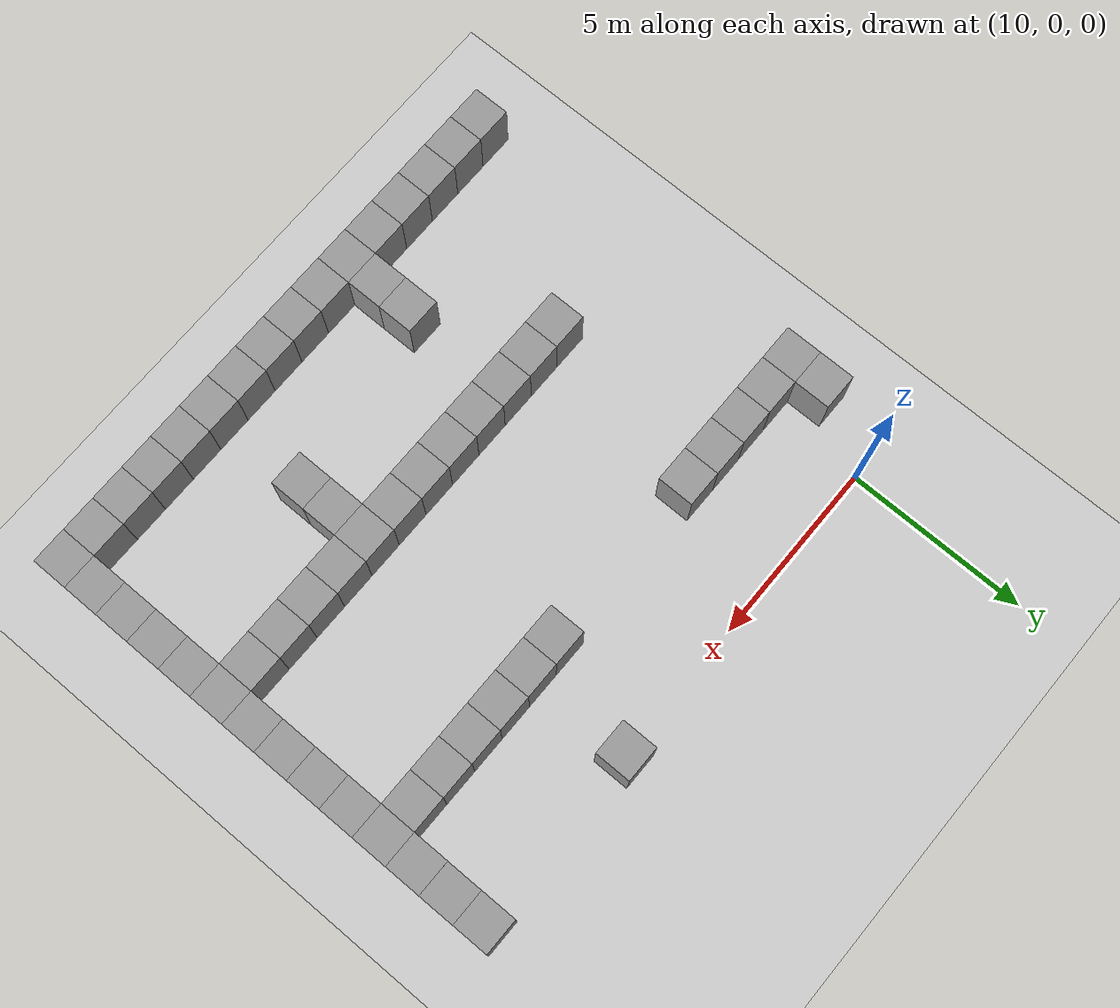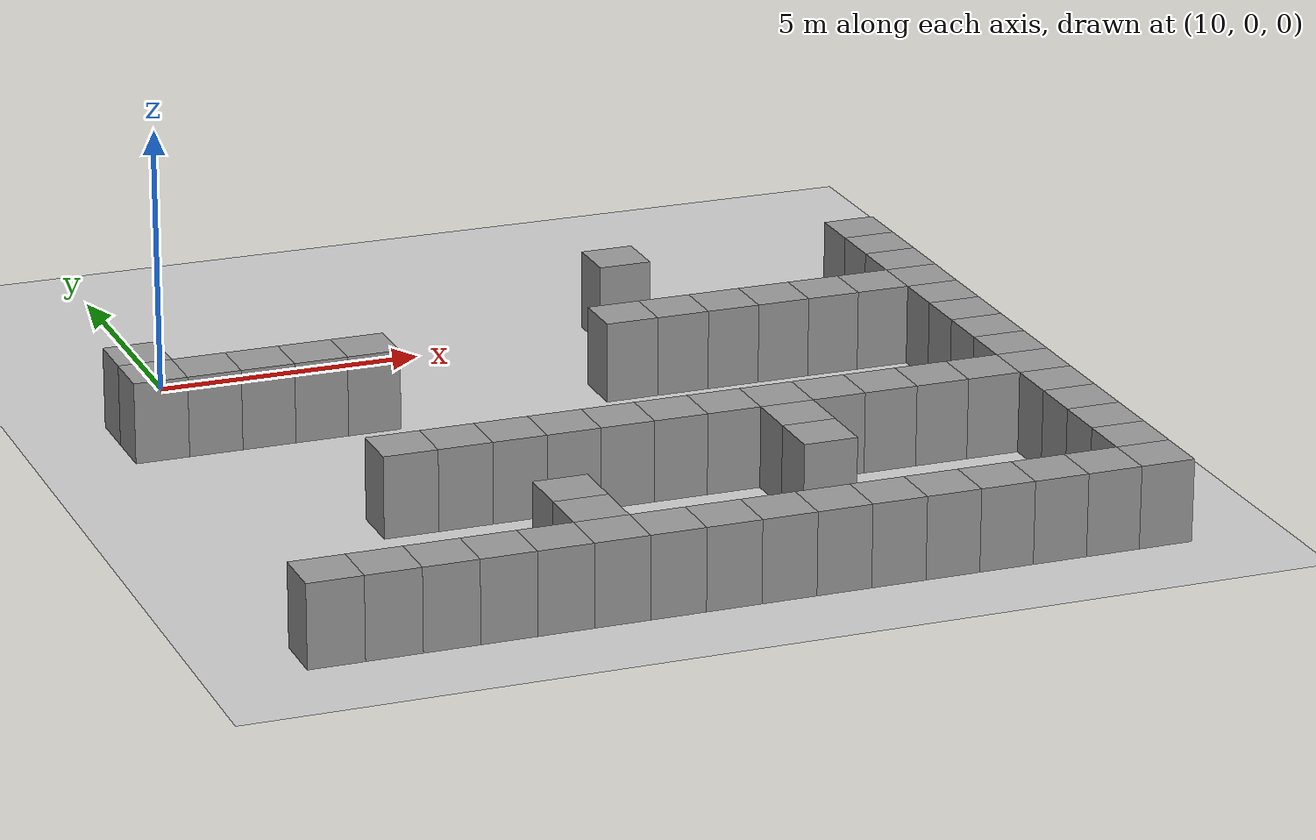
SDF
<sdf version="1.4">
 <world name="default">
  <model name="ground_plane">
   <static>1</static>
   <link name="link">
    <collision name="collision">
     <geometry><plane><normal>0 0 1</normal><size>100 100</size></plane></geometry>
     <surface><friction><ode><mu>100</mu><mu2>50</mu2></ode></friction></surface>
    </collision>
    <visual name="visual">
     <cast_shadows>0</cast_shadows>
     <geometry><plane><normal>0 0 1</normal><size>100 100</size></plane></geometry>
     <material>
      <script><uri>file://media/materials/scripts/gazebo.material</uri><name>Gazebo/Grey</name></script>
     </material>
    </visual>
    <velocity_decay><linear>0</linear><angular>0</angular></velocity_decay>
   </link>
  </model>
  <model name="unit_box_25">
   <pose>9.00009 -3.00001 0.5 0 0 -1.5e-05</pose>
   <static>1</static>
   <link name="link">
    <inertial>
     <mass>1</mass>
     <inertia><ixx>1</ixx><ixy>0</ixy><ixz>0</ixz><iyy>1</iyy><iyz>0</iyz><izz>1</izz></inertia>
    </inertial>
    <collision name="collision"><geometry><box><size>1 1 2</size></box></geometry></collision>
    <visual name="visual">
     <geometry><box><size>1 1 2</size></box></geometry>
     <material>
      <script><uri>file://media/materials/scripts/gazebo.material</uri><name>Gazebo/Grey</name></script>
     </material>
    </visual>
    <velocity_decay><linear>0</linear><angular>0</angular></velocity_decay>
   </link>
   <static>0</static>
  </model>
  <model name="unit_box_26">
   <pose>8.99998 -2.00001 0.5 0 0 -1.1e-05</pose>
   <static>1</static>
   <link name="link">
    <inertial>
     <mass>1</mass>
     <inertia><ixx>1</ixx><ixy>0</ixy><ixz>0</ixz><iyy>1</iyy><iyz>0</iyz><izz>1</izz></inertia>
    </inertial>
    <collision name="collision"><geometry><box><size>1 1 2</size></box></geometry></collision>
    <visual name="visual">
     <geometry><box><size>1 1 2</size></box></geometry>
     <material>
      <script><uri>file://media/materials/scripts/gazebo.material</uri><name>Gazebo/Grey</name></script>
     </material>
    </visual>
    <velocity_decay><linear>0</linear><angular>0</angular></velocity_decay>
   </link>
   <static>0</static>
  </model>
  <model name="unit_box_35">
   <pose>10.0001 -2.99995 0.5 0 0 -1.5e-05</pose>
   <static>1</static>
   <link name="link">
    <inertial>
     <mass>1</mass>
     <inertia><ixx>1</ixx><ixy>0</ixy><ixz>0</ixz><iyy>1</iyy><iyz>0</iyz><izz>1</izz></inertia>
    </inertial>
    <collision name="collision"><geometry><box><size>1 1 2</size></box></geometry></collision>
    <visual name="visual">
     <geometry><box><size>1 1 2</size></box></geometry>
     <material>
      <script><uri>file://media/materials/scripts/gazebo.material</uri><name>Gazebo/Grey</name></script>
     </material>
    </visual>
    <velocity_decay><linear>0</linear><angular>0</angular></velocity_decay>
   </link>
   <static>0</static>
  </model>
  <model name="unit_box_36">
   <pose>11.0001 -2.99997 0.5 0 0 -1.5e-05</pose>
   <static>1</static>
   <link name="link">
    <inertial>
     <mass>1</mass>
     <inertia><ixx>1</ixx><ixy>0</ixy><ixz>0</ixz><iyy>1</iyy><iyz>0</iyz><izz>1</izz></inertia>
    </inertial>
    <collision name="collision"><geometry><box><size>1 1 2</size></box></geometry></collision>
    <visual name="visual">
     <geometry><box><size>1 1 2</size></box></geometry>
     <material>
      <script><uri>file://media/materials/scripts/gazebo.material</uri><name>Gazebo/Grey</name></script>
     </material>
    </visual>
    <velocity_decay><linear>0</linear><angular>0</angular></velocity_decay>
   </link>
   <static>0</static>
  </model>
  <model name="unit_box_37">
   <pose>12.0001 -2.99998 0.5 0 0 -1.4e-05</pose>
   <static>1</static>
   <link name="link">
    <inertial>
     <mass>1</mass>
     <inertia><ixx>1</ixx><ixy>0</ixy><ixz>0</ixz><iyy>1</iyy><iyz>0</iyz><izz>1</izz></inertia>
    </inertial>
    <collision name="collision"><geometry><box><size>1 1 2</size></box></geometry></collision>
    <visual name="visual">
     <geometry><box><size>1 1 2</size></box></geometry>
     <material>
      <script><uri>file://media/materials/scripts/gazebo.material</uri><name>Gazebo/Grey</name></script>
     </material>
    </visual>
    <velocity_decay><linear>0</linear><angular>0</angular></velocity_decay>
   </link>
   <static>0</static>
  </model>
  <model name="unit_box_129">
   <pose>13.0001 -3 0.5 0 0 -1.3e-05</pose>
   <static>1</static>
   <link name="link">
    <inertial>
     <mass>1</mass>
     <inertia><ixx>1</ixx><ixy>0</ixy><ixz>0</ixz><iyy>1</iyy><iyz>0</iyz><izz>1</izz></inertia>
    </inertial>
    <collision name="collision"><geometry><box><size>1 1 2</size></box></geometry></collision>
    <visual name="visual">
     <geometry><box><size>1 1 2</size></box></geometry>
     <material>
      <script><uri>file://media/materials/scripts/gazebo.material</uri><name>Gazebo/Grey</name></script>
     </material>
    </visual>
    <velocity_decay><linear>0</linear><angular>0</angular></velocity_decay>
   </link>
   <static>0</static>
  </model>
  <model name="unit_box_182">
   <pose>24.0018 -0.999661 0.5 0 -0 7.7e-05</pose>
   <static>1</static>
   <link name="link">
    <inertial>
     <mass>1</mass>
     <inertia><ixx>1</ixx><ixy>0</ixy><ixz>0</ixz><iyy>1</iyy><iyz>0</iyz><izz>1</izz></inertia>
    </inertial>
    <collision name="collision"><geometry><box><size>1 1 2</size></box></geometry></collision>
    <visual name="visual">
     <geometry><box><size>1 1 2</size></box></geometry>
     <material>
      <script><uri>file://media/materials/scripts/gazebo.material</uri><name>Gazebo/Grey</name></script>
     </material>
    </visual>
    <velocity_decay><linear>0</linear><angular>0</angular></velocity_decay>
   </link>
   <static>0</static>
  </model>
  <model name="unit_box_199">
   <pose>23.9997 0.000344 0.5 0 -0 7.4e-05</pose>
   <static>1</static>
   <link name="link">
    <inertial>
     <mass>1</mass>
     <inertia><ixx>1</ixx><ixy>0</ixy><ixz>0</ixz><iyy>1</iyy><iyz>0</iyz><izz>1</izz></inertia>
    </inertial>
    <collision name="collision"><geometry><box><size>1 1 2</size></box></geometry></collision>
    <visual name="visual">
     <geometry><box><size>1 1 2</size></box></geometry>
     <material>
      <script><uri>file://media/materials/scripts/gazebo.material</uri><name>Gazebo/Grey</name></script>
     </material>
    </visual>
    <velocity_decay><linear>0</linear><angular>0</angular></velocity_decay>
   </link>
   <static>0</static>
  </model>
  <model name="unit_box_203">
   <pose>19 -0.000365 0.5 0 -0 0.000106</pose>
   <static>1</static>
   <link name="link">
    <inertial>
     <mass>1</mass>
     <inertia><ixx>1</ixx><ixy>0</ixy><ixz>0</ixz><iyy>1</iyy><iyz>0</iyz><izz>1</izz></inertia>
    </inertial>
    <collision name="collision"><geometry><box><size>1 1 2</size></box></geometry></collision>
    <visual name="visual">
     <geometry><box><size>1 1 2</size></box></geometry>
     <material>
      <script><uri>file://media/materials/scripts/gazebo.material</uri><name>Gazebo/Grey</name></script>
     </material>
    </visual>
    <velocity_decay><linear>0</linear><angular>0</angular></velocity_decay>
   </link>
   <static>0</static>
  </model>
  <model name="unit_box_204">
   <pose>24 -1.99999 0.5 0 -0 1e-06</pose>
   <static>1</static>
   <link name="link">
    <inertial>
     <mass>1</mass>
     <inertia><ixx>1</ixx><ixy>0</ixy><ixz>0</ixz><iyy>1</iyy><iyz>0</iyz><izz>1</izz></inertia>
    </inertial>
    <collision name="collision"><geometry><box><size>1 1 2</size></box></geometry></collision>
    <visual name="visual">
     <geometry><box><size>1 1 2</size></box></geometry>
     <material>
      <script><uri>file://media/materials/scripts/gazebo.material</uri><name>Gazebo/Grey</name></script>
     </material>
    </visual>
    <velocity_decay><linear>0</linear><angular>0</angular></velocity_decay>
   </link>
   <static>0</static>
  </model>
  <model name="unit_box_205">
   <pose>24 -2.99999 0.5 0 -0 1e-06</pose>
   <static>1</static>
   <link name="link">
    <inertial>
     <mass>1</mass>
     <inertia><ixx>1</ixx><ixy>0</ixy><ixz>0</ixz><iyy>1</iyy><iyz>0</iyz><izz>1</izz></inertia>
    </inertial>
    <collision name="collision"><geometry><box><size>1 1 2</size></box></geometry></collision>
    <visual name="visual">
     <geometry><box><size>1 1 2</size></box></geometry>
     <material>
      <script><uri>file://media/materials/scripts/gazebo.material</uri><name>Gazebo/Grey</name></script>
     </material>
    </visual>
    <velocity_decay><linear>0</linear><angular>0</angular></velocity_decay>
   </link>
   <static>0</static>
  </model>
  <model name="unit_box_206">
   <pose>24 -3.99999 0.5 0 0 -1e-06</pose>
   <static>1</static>
   <link name="link">
    <inertial>
     <mass>1</mass>
     <inertia><ixx>1</ixx><ixy>0</ixy><ixz>0</ixz><iyy>1</iyy><iyz>0</iyz><izz>1</izz></inertia>
    </inertial>
    <collision name="collision"><geometry><box><size>1 1 2</size></box></geometry></collision>
    <visual name="visual">
     <geometry><box><size>1 1 2</size></box></geometry>
     <material>
      <script><uri>file://media/materials/scripts/gazebo.material</uri><name>Gazebo/Grey</name></script>
     </material>
    </visual>
    <velocity_decay><linear>0</linear><angular>0</angular></velocity_decay>
   </link>
   <static>0</static>
  </model>
  <model name="unit_box_207">
   <pose>24 -4.99999 0.5 0 0 -1e-06</pose>
   <static>1</static>
   <link name="link">
    <inertial>
     <mass>1</mass>
     <inertia><ixx>1</ixx><ixy>0</ixy><ixz>0</ixz><iyy>1</iyy><iyz>0</iyz><izz>1</izz></inertia>
    </inertial>
    <collision name="collision"><geometry><box><size>1 1 2</size></box></geometry></collision>
    <visual name="visual">
     <geometry><box><size>1 1 2</size></box></geometry>
     <material>
      <script><uri>file://media/materials/scripts/gazebo.material</uri><name>Gazebo/Grey</name></script>
     </material>
    </visual>
    <velocity_decay><linear>0</linear><angular>0</angular></velocity_decay>
   </link>
   <static>0</static>
  </model>
  <model name="unit_box_208">
   <pose>24 -6 0.5 0 0 -2e-06</pose>
   <static>1</static>
   <link name="link">
    <inertial>
     <mass>1</mass>
     <inertia><ixx>1</ixx><ixy>0</ixy><ixz>0</ixz><iyy>1</iyy><iyz>0</iyz><izz>1</izz></inertia>
    </inertial>
    <collision name="collision"><geometry><box><size>1 1 2</size></box></geometry></collision>
    <visual name="visual">
     <geometry><box><size>1 1 2</size></box></geometry>
     <material>
      <script><uri>file://media/materials/scripts/gazebo.material</uri><name>Gazebo/Grey</name></script>
     </material>
    </visual>
    <velocity_decay><linear>0</linear><angular>0</angular></velocity_decay>
   </link>
   <static>0</static>
  </model>
  <model name="unit_box_209">
   <pose>18 -3 0.5 0 0 -2e-06</pose>
   <static>1</static>
   <link name="link">
    <inertial>
     <mass>1</mass>
     <inertia><ixx>1</ixx><ixy>0</ixy><ixz>0</ixz><iyy>1</iyy><iyz>0</iyz><izz>1</izz></inertia>
    </inertial>
    <collision name="collision"><geometry><box><size>1 1 2</size></box></geometry></collision>
    <visual name="visual">
     <geometry><box><size>1 1 2</size></box></geometry>
     <material>
      <script><uri>file://media/materials/scripts/gazebo.material</uri><name>Gazebo/Grey</name></script>
     </material>
    </visual>
    <velocity_decay><linear>0</linear><angular>0</angular></velocity_decay>
   </link>
   <static>0</static>
  </model>
  <model name="unit_box_210">
   <pose>19 -3 0.5 0 0 -2e-06</pose>
   <static>1</static>
   <link name="link">
    <inertial>
     <mass>1</mass>
     <inertia><ixx>1</ixx><ixy>0</ixy><ixz>0</ixz><iyy>1</iyy><iyz>0</iyz><izz>1</izz></inertia>
    </inertial>
    <collision name="collision"><geometry><box><size>1 1 2</size></box></geometry></collision>
    <visual name="visual">
     <geometry><box><size>1 1 2</size></box></geometry>
     <material>
      <script><uri>file://media/materials/scripts/gazebo.material</uri><name>Gazebo/Grey</name></script>
     </material>
    </visual>
    <velocity_decay><linear>0</linear><angular>0</angular></velocity_decay>
   </link>
   <static>0</static>
  </model>
  <model name="unit_box_211">
   <pose>20 -3 0.5 0 0 -2e-06</pose>
   <static>1</static>
   <link name="link">
    <inertial>
     <mass>1</mass>
     <inertia><ixx>1</ixx><ixy>0</ixy><ixz>0</ixz><iyy>1</iyy><iyz>0</iyz><izz>1</izz></inertia>
    </inertial>
    <collision name="collision"><geometry><box><size>1 1 2</size></box></geometry></collision>
    <visual name="visual">
     <geometry><box><size>1 1 2</size></box></geometry>
     <material>
      <script><uri>file://media/materials/scripts/gazebo.material</uri><name>Gazebo/Grey</name></script>
     </material>
    </visual>
    <velocity_decay><linear>0</linear><angular>0</angular></velocity_decay>
   </link>
   <static>0</static>
  </model>
  <model name="unit_box_212">
   <pose>21 -3 0.5 0 0 -3e-06</pose>
   <static>1</static>
   <link name="link">
    <inertial>
     <mass>1</mass>
     <inertia><ixx>1</ixx><ixy>0</ixy><ixz>0</ixz><iyy>1</iyy><iyz>0</iyz><izz>1</izz></inertia>
    </inertial>
    <collision name="collision"><geometry><box><size>1 1 2</size></box></geometry></collision>
    <visual name="visual">
     <geometry><box><size>1 1 2</size></box></geometry>
     <material>
      <script><uri>file://media/materials/scripts/gazebo.material</uri><name>Gazebo/Grey</name></script>
     </material>
    </visual>
    <velocity_decay><linear>0</linear><angular>0</angular></velocity_decay>
   </link>
   <static>0</static>
  </model>
  <model name="unit_box_213">
   <pose>22 -3 0.5 0 0 -3e-06</pose>
   <static>1</static>
   <link name="link">
    <inertial>
     <mass>1</mass>
     <inertia><ixx>1</ixx><ixy>0</ixy><ixz>0</ixz><iyy>1</iyy><iyz>0</iyz><izz>1</izz></inertia>
    </inertial>
    <collision name="collision"><geometry><box><size>1 1 2</size></box></geometry></collision>
    <visual name="visual">
     <geometry><box><size>1 1 2</size></box></geometry>
     <material>
      <script><uri>file://media/materials/scripts/gazebo.material</uri><name>Gazebo/Grey</name></script>
     </material>
    </visual>
    <velocity_decay><linear>0</linear><angular>0</angular></velocity_decay>
   </link>
   <static>0</static>
  </model>
  <model name="unit_box_214">
   <pose>23 -3 0.5 0 0 -3e-06</pose>
   <static>1</static>
   <link name="link">
    <inertial>
     <mass>1</mass>
     <inertia><ixx>1</ixx><ixy>0</ixy><ixz>0</ixz><iyy>1</iyy><iyz>0</iyz><izz>1</izz></inertia>
    </inertial>
    <collision name="collision"><geometry><box><size>1 1 2</size></box></geometry></collision>
    <visual name="visual">
     <geometry><box><size>1 1 2</size></box></geometry>
     <material>
      <script><uri>file://media/materials/scripts/gazebo.material</uri><name>Gazebo/Grey</name></script>
     </material>
    </visual>
    <velocity_decay><linear>0</linear><angular>0</angular></velocity_decay>
   </link>
   <static>0</static>
  </model>
  <model name="unit_box_215">
   <pose>24 -7 0.5 0 0 -2e-06</pose>
   <static>1</static>
   <link name="link">
    <inertial>
     <mass>1</mass>
     <inertia><ixx>1</ixx><ixy>0</ixy><ixz>0</ixz><iyy>1</iyy><iyz>0</iyz><izz>1</izz></inertia>
    </inertial>
    <collision name="collision"><geometry><box><size>1 1 2</size></box></geometry></collision>
    <visual name="visual">
     <geometry><box><size>1 1 2</size></box></geometry>
     <material>
      <script><uri>file://media/materials/scripts/gazebo.material</uri><name>Gazebo/Grey</name></script>
     </material>
    </visual>
    <velocity_decay><linear>0</linear><angular>0</angular></velocity_decay>
   </link>
   <static>0</static>
  </model>
  <model name="unit_box_216">
   <pose>24 -8 0.5 0 0 -3e-06</pose>
   <static>1</static>
   <link name="link">
    <inertial>
     <mass>1</mass>
     <inertia><ixx>1</ixx><ixy>0</ixy><ixz>0</ixz><iyy>1</iyy><iyz>0</iyz><izz>1</izz></inertia>
    </inertial>
    <collision name="collision"><geometry><box><size>1 1 2</size></box></geometry></collision>
    <visual name="visual">
     <geometry><box><size>1 1 2</size></box></geometry>
     <material>
      <script><uri>file://media/materials/scripts/gazebo.material</uri><name>Gazebo/Grey</name></script>
     </material>
    </visual>
    <velocity_decay><linear>0</linear><angular>0</angular></velocity_decay>
   </link>
   <static>0</static>
  </model>
  <model name="unit_box_217">
   <pose>23 -8 0.5 0 -0 0</pose>
   <static>1</static>
   <link name="link">
    <inertial>
     <mass>1</mass>
     <inertia><ixx>1</ixx><ixy>0</ixy><ixz>0</ixz><iyy>1</iyy><iyz>0</iyz><izz>1</izz></inertia>
    </inertial>
    <collision name="collision"><geometry><box><size>1 1 2</size></box></geometry></collision>
    <visual name="visual">
     <geometry><box><size>1 1 2</size></box></geometry>
     <material>
      <script><uri>file://media/materials/scripts/gazebo.material</uri><name>Gazebo/Grey</name></script>
     </material>
    </visual>
    <velocity_decay><linear>0</linear><angular>0</angular></velocity_decay>
   </link>
   <static>0</static>
  </model>
  <model name="unit_box_218">
   <pose>22 -8.00001 0.5 0 0 -1e-06</pose>
   <static>1</static>
   <link name="link">
    <inertial>
     <mass>1</mass>
     <inertia><ixx>1</ixx><ixy>0</ixy><ixz>0</ixz><iyy>1</iyy><iyz>0</iyz><izz>1</izz></inertia>
    </inertial>
    <collision name="collision"><geometry><box><size>1 1 2</size></box></geometry></collision>
    <visual name="visual">
     <geometry><box><size>1 1 2</size></box></geometry>
     <material>
      <script><uri>file://media/materials/scripts/gazebo.material</uri><name>Gazebo/Grey</name></script>
     </material>
    </visual>
    <velocity_decay><linear>0</linear><angular>0</angular></velocity_decay>
   </link>
   <static>0</static>
  </model>
  <model name="unit_box_219">
   <pose>21 -8 0.5 0 0 -1e-06</pose>
   <static>1</static>
   <link name="link">
    <inertial>
     <mass>1</mass>
     <inertia><ixx>1</ixx><ixy>0</ixy><ixz>0</ixz><iyy>1</iyy><iyz>0</iyz><izz>1</izz></inertia>
    </inertial>
    <collision name="collision"><geometry><box><size>1 1 2</size></box></geometry></collision>
    <visual name="visual">
     <geometry><box><size>1 1 2</size></box></geometry>
     <material>
      <script><uri>file://media/materials/scripts/gazebo.material</uri><name>Gazebo/Grey</name></script>
     </material>
    </visual>
    <velocity_decay><linear>0</linear><angular>0</angular></velocity_decay>
   </link>
   <static>0</static>
  </model>
  <model name="unit_box_220">
   <pose>20 -8 0.500001 1e-06 -0 -1e-06</pose>
   <static>1</static>
   <link name="link">
    <inertial>
     <mass>1</mass>
     <inertia><ixx>1</ixx><ixy>0</ixy><ixz>0</ixz><iyy>1</iyy><iyz>0</iyz><izz>1</izz></inertia>
    </inertial>
    <collision name="collision"><geometry><box><size>1 1 2</size></box></geometry></collision>
    <visual name="visual">
     <geometry><box><size>1 1 2</size></box></geometry>
     <material>
      <script><uri>file://media/materials/scripts/gazebo.material</uri><name>Gazebo/Grey</name></script>
     </material>
    </visual>
    <velocity_decay><linear>0</linear><angular>0</angular></velocity_decay>
   </link>
   <static>0</static>
  </model>
  <model name="unit_box_221">
   <pose>19 -7.99999 0.5 0 -1e-06 -4e-06</pose>
   <static>1</static>
   <link name="link">
    <inertial>
     <mass>1</mass>
     <inertia><ixx>1</ixx><ixy>0</ixy><ixz>0</ixz><iyy>1</iyy><iyz>0</iyz><izz>1</izz></inertia>
    </inertial>
    <collision name="collision"><geometry><box><size>1 1 2</size></box></geometry></collision>
    <visual name="visual">
     <geometry><box><size>1 1 2</size></box></geometry>
     <material>
      <script><uri>file://media/materials/scripts/gazebo.material</uri><name>Gazebo/Grey</name></script>
     </material>
    </visual>
    <velocity_decay><linear>0</linear><angular>0</angular></velocity_decay>
   </link>
   <static>0</static>
  </model>
  <model name="unit_box_222">
   <pose>18 -8.00001 0.5 0 0 -2e-06</pose>
   <static>1</static>
   <link name="link">
    <inertial>
     <mass>1</mass>
     <inertia><ixx>1</ixx><ixy>0</ixy><ixz>0</ixz><iyy>1</iyy><iyz>0</iyz><izz>1</izz></inertia>
    </inertial>
    <collision name="collision"><geometry><box><size>1 1 2</size></box></geometry></collision>
    <visual name="visual">
     <geometry><box><size>1 1 2</size></box></geometry>
     <material>
      <script><uri>file://media/materials/scripts/gazebo.material</uri><name>Gazebo/Grey</name></script>
     </material>
    </visual>
    <velocity_decay><linear>0</linear><angular>0</angular></velocity_decay>
   </link>
   <static>0</static>
  </model>
  <model name="unit_box_223">
   <pose>17 -8 0.5 0 -0 1e-06</pose>
   <static>1</static>
   <link name="link">
    <inertial>
     <mass>1</mass>
     <inertia><ixx>1</ixx><ixy>0</ixy><ixz>0</ixz><iyy>1</iyy><iyz>0</iyz><izz>1</izz></inertia>
    </inertial>
    <collision name="collision"><geometry><box><size>1 1 2</size></box></geometry></collision>
    <visual name="visual">
     <geometry><box><size>1 1 2</size></box></geometry>
     <material>
      <script><uri>file://media/materials/scripts/gazebo.material</uri><name>Gazebo/Grey</name></script>
     </material>
    </visual>
    <velocity_decay><linear>0</linear><angular>0</angular></velocity_decay>
   </link>
   <static>0</static>
  </model>
  <model name="unit_box_235">
   <pose>16 -7.99999 0.5 0 -0 1e-06</pose>
   <static>1</static>
   <link name="link">
    <inertial>
     <mass>1</mass>
     <inertia><ixx>1</ixx><ixy>0</ixy><ixz>0</ixz><iyy>1</iyy><iyz>0</iyz><izz>1</izz></inertia>
    </inertial>
    <collision name="collision"><geometry><box><size>1 1 2</size></box></geometry></collision>
    <visual name="visual">
     <geometry><box><size>1 1 2</size></box></geometry>
     <material>
      <script><uri>file://media/materials/scripts/gazebo.material</uri><name>Gazebo/Grey</name></script>
     </material>
    </visual>
    <velocity_decay><linear>0</linear><angular>0</angular></velocity_decay>
   </link>
   <static>0</static>
  </model>
  <model name="unit_box_236">
   <pose>15 -8.00001 0.5 0 -0 1e-06</pose>
   <static>1</static>
   <link name="link">
    <inertial>
     <mass>1</mass>
     <inertia><ixx>1</ixx><ixy>0</ixy><ixz>0</ixz><iyy>1</iyy><iyz>0</iyz><izz>1</izz></inertia>
    </inertial>
    <collision name="collision"><geometry><box><size>1 1 2</size></box></geometry></collision>
    <visual name="visual">
     <geometry><box><size>1 1 2</size></box></geometry>
     <material>
      <script><uri>file://media/materials/scripts/gazebo.material</uri><name>Gazebo/Grey</name></script>
     </material>
    </visual>
    <velocity_decay><linear>0</linear><angular>0</angular></velocity_decay>
   </link>
   <static>0</static>
  </model>
  <model name="unit_box_237">
   <pose>14 -8 0.5 0 -0 1e-06</pose>
   <static>1</static>
   <link name="link">
    <inertial>
     <mass>1</mass>
     <inertia><ixx>1</ixx><ixy>0</ixy><ixz>0</ixz><iyy>1</iyy><iyz>0</iyz><izz>1</izz></inertia>
    </inertial>
    <collision name="collision"><geometry><box><size>1 1 2</size></box></geometry></collision>
    <visual name="visual">
     <geometry><box><size>1 1 2</size></box></geometry>
     <material>
      <script><uri>file://media/materials/scripts/gazebo.material</uri><name>Gazebo/Grey</name></script>
     </material>
    </visual>
    <velocity_decay><linear>0</linear><angular>0</angular></velocity_decay>
   </link>
   <static>0</static>
  </model>
  <model name="unit_box_238">
   <pose>13 -8 0.5 0 -0 2e-06</pose>
   <static>1</static>
   <link name="link">
    <inertial>
     <mass>1</mass>
     <inertia><ixx>1</ixx><ixy>0</ixy><ixz>0</ixz><iyy>1</iyy><iyz>0</iyz><izz>1</izz></inertia>
    </inertial>
    <collision name="collision"><geometry><box><size>1 1 2</size></box></geometry></collision>
    <visual name="visual">
     <geometry><box><size>1 1 2</size></box></geometry>
     <material>
      <script><uri>file://media/materials/scripts/gazebo.material</uri><name>Gazebo/Grey</name></script>
     </material>
    </visual>
    <velocity_decay><linear>0</linear><angular>0</angular></velocity_decay>
   </link>
   <static>0</static>
  </model>
  <model name="unit_box_239">
   <pose>12 -8 0.499999 3e-06 -0 2e-06</pose>
   <static>1</static>
   <link name="link">
    <inertial>
     <mass>1</mass>
     <inertia><ixx>1</ixx><ixy>0</ixy><ixz>0</ixz><iyy>1</iyy><iyz>0</iyz><izz>1</izz></inertia>
    </inertial>
    <collision name="collision"><geometry><box><size>1 1 2</size></box></geometry></collision>
    <visual name="visual">
     <geometry><box><size>1 1 2</size></box></geometry>
     <material>
      <script><uri>file://media/materials/scripts/gazebo.material</uri><name>Gazebo/Grey</name></script>
     </material>
    </visual>
    <velocity_decay><linear>0</linear><angular>0</angular></velocity_decay>
   </link>
   <static>0</static>
  </model>
  <model name="unit_box_264">
   <pose>9 -13 0.5 0 0 -1.1e-05</pose>
   <static>1</static>
   <link name="link">
    <inertial>
     <mass>1</mass>
     <inertia><ixx>1</ixx><ixy>0</ixy><ixz>0</ixz><iyy>1</iyy><iyz>0</iyz><izz>1</izz></inertia>
    </inertial>
    <collision name="collision"><geometry><box><size>1 1 2</size></box></geometry></collision>
    <visual name="visual">
     <geometry><box><size>1 1 2</size></box></geometry>
     <material>
      <script><uri>file://media/materials/scripts/gazebo.material</uri><name>Gazebo/Grey</name></script>
     </material>
    </visual>
    <velocity_decay><linear>0</linear><angular>0</angular></velocity_decay>
   </link>
   <static>0</static>
  </model>
  <model name="unit_box_265">
   <pose>10 -13 0.500001 2e-06 -0 -1.1e-05</pose>
   <static>1</static>
   <link name="link">
    <inertial>
     <mass>1</mass>
     <inertia><ixx>1</ixx><ixy>0</ixy><ixz>0</ixz><iyy>1</iyy><iyz>0</iyz><izz>1</izz></inertia>
    </inertial>
    <collision name="collision"><geometry><box><size>1 1 2</size></box></geometry></collision>
    <visual name="visual">
     <geometry><box><size>1 1 2</size></box></geometry>
     <material>
      <script><uri>file://media/materials/scripts/gazebo.material</uri><name>Gazebo/Grey</name></script>
     </material>
    </visual>
    <velocity_decay><linear>0</linear><angular>0</angular></velocity_decay>
   </link>
   <static>0</static>
  </model>
  <model name="unit_box_266">
   <pose>11 -13 0.499992 1e-06 3.23117e-27 -8e-06</pose>
   <static>1</static>
   <link name="link">
    <inertial>
     <mass>1</mass>
     <inertia><ixx>1</ixx><ixy>0</ixy><ixz>0</ixz><iyy>1</iyy><iyz>0</iyz><izz>1</izz></inertia>
    </inertial>
    <collision name="collision"><geometry><box><size>1 1 2</size></box></geometry></collision>
    <visual name="visual">
     <geometry><box><size>1 1 2</size></box></geometry>
     <material>
      <script><uri>file://media/materials/scripts/gazebo.material</uri><name>Gazebo/Grey</name></script>
     </material>
    </visual>
    <velocity_decay><linear>0</linear><angular>0</angular></velocity_decay>
   </link>
   <static>0</static>
  </model>
  <model name="unit_box_267">
   <pose>12 -13 0.5 0 0 -8e-06</pose>
   <static>1</static>
   <link name="link">
    <inertial>
     <mass>1</mass>
     <inertia><ixx>1</ixx><ixy>0</ixy><ixz>0</ixz><iyy>1</iyy><iyz>0</iyz><izz>1</izz></inertia>
    </inertial>
    <collision name="collision"><geometry><box><size>1 1 2</size></box></geometry></collision>
    <visual name="visual">
     <geometry><box><size>1 1 2</size></box></geometry>
     <material>
      <script><uri>file://media/materials/scripts/gazebo.material</uri><name>Gazebo/Grey</name></script>
     </material>
    </visual>
    <velocity_decay><linear>0</linear><angular>0</angular></velocity_decay>
   </link>
   <static>0</static>
  </model>
  <model name="unit_box_268">
   <pose>13 -13 0.500001 1e-06 8.07794e-28 -7e-06</pose>
   <static>1</static>
   <link name="link">
    <inertial>
     <mass>1</mass>
     <inertia><ixx>1</ixx><ixy>0</ixy><ixz>0</ixz><iyy>1</iyy><iyz>0</iyz><izz>1</izz></inertia>
    </inertial>
    <collision name="collision"><geometry><box><size>1 1 2</size></box></geometry></collision>
    <visual name="visual">
     <geometry><box><size>1 1 2</size></box></geometry>
     <material>
      <script><uri>file://media/materials/scripts/gazebo.material</uri><name>Gazebo/Grey</name></script>
     </material>
    </visual>
    <velocity_decay><linear>0</linear><angular>0</angular></velocity_decay>
   </link>
   <static>0</static>
  </model>
  <model name="unit_box_269">
   <pose>14 -13 0.5 0 0 -1e-05</pose>
   <static>1</static>
   <link name="link">
    <inertial>
     <mass>1</mass>
     <inertia><ixx>1</ixx><ixy>0</ixy><ixz>0</ixz><iyy>1</iyy><iyz>0</iyz><izz>1</izz></inertia>
    </inertial>
    <collision name="collision"><geometry><box><size>1 1 2</size></box></geometry></collision>
    <visual name="visual">
     <geometry><box><size>1 1 2</size></box></geometry>
     <material>
      <script><uri>file://media/materials/scripts/gazebo.material</uri><name>Gazebo/Grey</name></script>
     </material>
    </visual>
    <velocity_decay><linear>0</linear><angular>0</angular></velocity_decay>
   </link>
   <static>0</static>
  </model>
  <model name="unit_box_270">
   <pose>14 -12 0.5 0 0 -1e-05</pose>
   <static>1</static>
   <link name="link">
    <inertial>
     <mass>1</mass>
     <inertia><ixx>1</ixx><ixy>0</ixy><ixz>0</ixz><iyy>1</iyy><iyz>0</iyz><izz>1</izz></inertia>
    </inertial>
    <collision name="collision"><geometry><box><size>1 1 2</size></box></geometry></collision>
    <visual name="visual">
     <geometry><box><size>1 1 2</size></box></geometry>
     <material>
      <script><uri>file://media/materials/scripts/gazebo.material</uri><name>Gazebo/Grey</name></script>
     </material>
    </visual>
    <velocity_decay><linear>0</linear><angular>0</angular></velocity_decay>
   </link>
   <static>0</static>
  </model>
  <model name="unit_box_271">
   <pose>19 -9 0.5 0 0 -4e-06</pose>
   <static>1</static>
   <link name="link">
    <inertial>
     <mass>1</mass>
     <inertia><ixx>1</ixx><ixy>0</ixy><ixz>0</ixz><iyy>1</iyy><iyz>0</iyz><izz>1</izz></inertia>
    </inertial>
    <collision name="collision"><geometry><box><size>1 1 2</size></box></geometry></collision>
    <visual name="visual">
     <geometry><box><size>1 1 2</size></box></geometry>
     <material>
      <script><uri>file://media/materials/scripts/gazebo.material</uri><name>Gazebo/Grey</name></script>
     </material>
    </visual>
    <velocity_decay><linear>0</linear><angular>0</angular></velocity_decay>
   </link>
   <static>0</static>
  </model>
  <model name="unit_box_272">
   <pose>19 -10 0.5 0 0 -5e-06</pose>
   <static>1</static>
   <link name="link">
    <inertial>
     <mass>1</mass>
     <inertia><ixx>1</ixx><ixy>0</ixy><ixz>0</ixz><iyy>1</iyy><iyz>0</iyz><izz>1</izz></inertia>
    </inertial>
    <collision name="collision"><geometry><box><size>1 1 2</size></box></geometry></collision>
    <visual name="visual">
     <geometry><box><size>1 1 2</size></box></geometry>
     <material>
      <script><uri>file://media/materials/scripts/gazebo.material</uri><name>Gazebo/Grey</name></script>
     </material>
    </visual>
    <velocity_decay><linear>0</linear><angular>0</angular></velocity_decay>
   </link>
   <static>0</static>
  </model>
  <model name="unit_box_273">
   <pose>14 -11 0.5 0 0 -1e-05</pose>
   <static>1</static>
   <link name="link">
    <inertial>
     <mass>1</mass>
     <inertia><ixx>1</ixx><ixy>0</ixy><ixz>0</ixz><iyy>1</iyy><iyz>0</iyz><izz>1</izz></inertia>
    </inertial>
    <collision name="collision"><geometry><box><size>1 1 2</size></box></geometry></collision>
    <visual name="visual">
     <geometry><box><size>1 1 2</size></box></geometry>
     <material>
      <script><uri>file://media/materials/scripts/gazebo.material</uri><name>Gazebo/Grey</name></script>
     </material>
    </visual>
    <velocity_decay><linear>0</linear><angular>0</angular></velocity_decay>
   </link>
   <static>0</static>
  </model>
  <model name="unit_box_274">
   <pose>24 -9 0.5 0 0 -6e-06</pose>
   <static>1</static>
   <link name="link">
    <inertial>
     <mass>1</mass>
     <inertia><ixx>1</ixx><ixy>0</ixy><ixz>0</ixz><iyy>1</iyy><iyz>0</iyz><izz>1</izz></inertia>
    </inertial>
    <collision name="collision"><geometry><box><size>1 1 2</size></box></geometry></collision>
    <visual name="visual">
     <geometry><box><size>1 1 2</size></box></geometry>
     <material>
      <script><uri>file://media/materials/scripts/gazebo.material</uri><name>Gazebo/Grey</name></script>
     </material>
    </visual>
    <velocity_decay><linear>0</linear><angular>0</angular></velocity_decay>
   </link>
   <static>0</static>
  </model>
  <model name="unit_box_275">
   <pose>24 -10 0.5 0 0 -6e-06</pose>
   <static>1</static>
   <link name="link">
    <inertial>
     <mass>1</mass>
     <inertia><ixx>1</ixx><ixy>0</ixy><ixz>0</ixz><iyy>1</iyy><iyz>0</iyz><izz>1</izz></inertia>
    </inertial>
    <collision name="collision"><geometry><box><size>1 1 2</size></box></geometry></collision>
    <visual name="visual">
     <geometry><box><size>1 1 2</size></box></geometry>
     <material>
      <script><uri>file://media/materials/scripts/gazebo.material</uri><name>Gazebo/Grey</name></script>
     </material>
    </visual>
    <velocity_decay><linear>0</linear><angular>0</angular></velocity_decay>
   </link>
   <static>0</static>
  </model>
  <model name="unit_box_276">
   <pose>24 -11 0.5 0 0 -4e-06</pose>
   <static>1</static>
   <link name="link">
    <inertial>
     <mass>1</mass>
     <inertia><ixx>1</ixx><ixy>0</ixy><ixz>0</ixz><iyy>1</iyy><iyz>0</iyz><izz>1</izz></inertia>
    </inertial>
    <collision name="collision"><geometry><box><size>1 1 2</size></box></geometry></collision>
    <visual name="visual">
     <geometry><box><size>1 1 2</size></box></geometry>
     <material>
      <script><uri>file://media/materials/scripts/gazebo.material</uri><name>Gazebo/Grey</name></script>
     </material>
    </visual>
    <velocity_decay><linear>0</linear><angular>0</angular></velocity_decay>
   </link>
   <static>0</static>
  </model>
  <model name="unit_box_277">
   <pose>24 -12 0.5 0 0 -4e-06</pose>
   <static>1</static>
   <link name="link">
    <inertial>
     <mass>1</mass>
     <inertia><ixx>1</ixx><ixy>0</ixy><ixz>0</ixz><iyy>1</iyy><iyz>0</iyz><izz>1</izz></inertia>
    </inertial>
    <collision name="collision"><geometry><box><size>1 1 2</size></box></geometry></collision>
    <visual name="visual">
     <geometry><box><size>1 1 2</size></box></geometry>
     <material>
      <script><uri>file://media/materials/scripts/gazebo.material</uri><name>Gazebo/Grey</name></script>
     </material>
    </visual>
    <velocity_decay><linear>0</linear><angular>0</angular></velocity_decay>
   </link>
   <static>0</static>
  </model>
  <model name="unit_box_278">
   <pose>15 -13 0.499998 -1e-06 5e-06 -1e-05</pose>
   <static>1</static>
   <link name="link">
    <inertial>
     <mass>1</mass>
     <inertia><ixx>1</ixx><ixy>0</ixy><ixz>0</ixz><iyy>1</iyy><iyz>0</iyz><izz>1</izz></inertia>
    </inertial>
    <collision name="collision"><geometry><box><size>1 1 2</size></box></geometry></collision>
    <visual name="visual">
     <geometry><box><size>1 1 2</size></box></geometry>
     <material>
      <script><uri>file://media/materials/scripts/gazebo.material</uri><name>Gazebo/Grey</name></script>
     </material>
    </visual>
    <velocity_decay><linear>0</linear><angular>0</angular></velocity_decay>
   </link>
   <static>0</static>
  </model>
  <model name="unit_box_279">
   <pose>16 -13 0.49999 0 0 -1e-05</pose>
   <static>1</static>
   <link name="link">
    <inertial>
     <mass>1</mass>
     <inertia><ixx>1</ixx><ixy>0</ixy><ixz>0</ixz><iyy>1</iyy><iyz>0</iyz><izz>1</izz></inertia>
    </inertial>
    <collision name="collision"><geometry><box><size>1 1 2</size></box></geometry></collision>
    <visual name="visual">
     <geometry><box><size>1 1 2</size></box></geometry>
     <material>
      <script><uri>file://media/materials/scripts/gazebo.material</uri><name>Gazebo/Grey</name></script>
     </material>
    </visual>
    <velocity_decay><linear>0</linear><angular>0</angular></velocity_decay>
   </link>
   <static>0</static>
  </model>
  <model name="unit_box_280">
   <pose>17 -13 0.5 -1e-06 1.61559e-27 -1.1e-05</pose>
   <static>1</static>
   <link name="link">
    <inertial>
     <mass>1</mass>
     <inertia><ixx>1</ixx><ixy>0</ixy><ixz>0</ixz><iyy>1</iyy><iyz>0</iyz><izz>1</izz></inertia>
    </inertial>
    <collision name="collision"><geometry><box><size>1 1 2</size></box></geometry></collision>
    <visual name="visual">
     <geometry><box><size>1 1 2</size></box></geometry>
     <material>
      <script><uri>file://media/materials/scripts/gazebo.material</uri><name>Gazebo/Grey</name></script>
     </material>
    </visual>
    <velocity_decay><linear>0</linear><angular>0</angular></velocity_decay>
   </link>
   <static>0</static>
  </model>
  <model name="unit_box_281">
   <pose>18 -13 0.5 0 0 -1.1e-05</pose>
   <static>1</static>
   <link name="link">
    <inertial>
     <mass>1</mass>
     <inertia><ixx>1</ixx><ixy>0</ixy><ixz>0</ixz><iyy>1</iyy><iyz>0</iyz><izz>1</izz></inertia>
    </inertial>
    <collision name="collision"><geometry><box><size>1 1 2</size></box></geometry></collision>
    <visual name="visual">
     <geometry><box><size>1 1 2</size></box></geometry>
     <material>
      <script><uri>file://media/materials/scripts/gazebo.material</uri><name>Gazebo/Grey</name></script>
     </material>
    </visual>
    <velocity_decay><linear>0</linear><angular>0</angular></velocity_decay>
   </link>
   <static>0</static>
  </model>
  <model name="unit_box_282">
   <pose>19 -13 0.5 0 0 -9e-06</pose>
   <static>1</static>
   <link name="link">
    <inertial>
     <mass>1</mass>
     <inertia><ixx>1</ixx><ixy>0</ixy><ixz>0</ixz><iyy>1</iyy><iyz>0</iyz><izz>1</izz></inertia>
    </inertial>
    <collision name="collision"><geometry><box><size>1 1 2</size></box></geometry></collision>
    <visual name="visual">
     <geometry><box><size>1 1 2</size></box></geometry>
     <material>
      <script><uri>file://media/materials/scripts/gazebo.material</uri><name>Gazebo/Grey</name></script>
     </material>
    </visual>
    <velocity_decay><linear>0</linear><angular>0</angular></velocity_decay>
   </link>
   <static>0</static>
  </model>
  <model name="unit_box_283">
   <pose>20 -13 0.5 0 0 -9e-06</pose>
   <static>1</static>
   <link name="link">
    <inertial>
     <mass>1</mass>
     <inertia><ixx>1</ixx><ixy>0</ixy><ixz>0</ixz><iyy>1</iyy><iyz>0</iyz><izz>1</izz></inertia>
    </inertial>
    <collision name="collision"><geometry><box><size>1 1 2</size></box></geometry></collision>
    <visual name="visual">
     <geometry><box><size>1 1 2</size></box></geometry>
     <material>
      <script><uri>file://media/materials/scripts/gazebo.material</uri><name>Gazebo/Grey</name></script>
     </material>
    </visual>
    <velocity_decay><linear>0</linear><angular>0</angular></velocity_decay>
   </link>
   <static>0</static>
  </model>
  <model name="unit_box_284">
   <pose>21 -13 0.5 0 0 -6e-06</pose>
   <static>1</static>
   <link name="link">
    <inertial>
     <mass>1</mass>
     <inertia><ixx>1</ixx><ixy>0</ixy><ixz>0</ixz><iyy>1</iyy><iyz>0</iyz><izz>1</izz></inertia>
    </inertial>
    <collision name="collision"><geometry><box><size>1 1 2</size></box></geometry></collision>
    <visual name="visual">
     <geometry><box><size>1 1 2</size></box></geometry>
     <material>
      <script><uri>file://media/materials/scripts/gazebo.material</uri><name>Gazebo/Grey</name></script>
     </material>
    </visual>
    <velocity_decay><linear>0</linear><angular>0</angular></velocity_decay>
   </link>
   <static>0</static>
  </model>
  <model name="unit_box_285">
   <pose>22 -13 0.5 1e-06 -0 -6e-06</pose>
   <static>1</static>
   <link name="link">
    <inertial>
     <mass>1</mass>
     <inertia><ixx>1</ixx><ixy>0</ixy><ixz>0</ixz><iyy>1</iyy><iyz>0</iyz><izz>1</izz></inertia>
    </inertial>
    <collision name="collision"><geometry><box><size>1 1 2</size></box></geometry></collision>
    <visual name="visual">
     <geometry><box><size>1 1 2</size></box></geometry>
     <material>
      <script><uri>file://media/materials/scripts/gazebo.material</uri><name>Gazebo/Grey</name></script>
     </material>
    </visual>
    <velocity_decay><linear>0</linear><angular>0</angular></velocity_decay>
   </link>
   <static>0</static>
  </model>
  <model name="unit_box_286">
   <pose>23 -13 0.5 0 0 -6e-06</pose>
   <static>1</static>
   <link name="link">
    <inertial>
     <mass>1</mass>
     <inertia><ixx>1</ixx><ixy>0</ixy><ixz>0</ixz><iyy>1</iyy><iyz>0</iyz><izz>1</izz></inertia>
    </inertial>
    <collision name="collision"><geometry><box><size>1 1 2</size></box></geometry></collision>
    <visual name="visual">
     <geometry><box><size>1 1 2</size></box></geometry>
     <material>
      <script><uri>file://media/materials/scripts/gazebo.material</uri><name>Gazebo/Grey</name></script>
     </material>
    </visual>
    <velocity_decay><linear>0</linear><angular>0</angular></velocity_decay>
   </link>
   <static>0</static>
  </model>
  <model name="unit_box_287">
   <pose>24 -13 0.5 0 0 -5e-06</pose>
   <static>1</static>
   <link name="link">
    <inertial>
     <mass>1</mass>
     <inertia><ixx>1</ixx><ixy>0</ixy><ixz>0</ixz><iyy>1</iyy><iyz>0</iyz><izz>1</izz></inertia>
    </inertial>
    <collision name="collision"><geometry><box><size>1 1 2</size></box></geometry></collision>
    <visual name="visual">
     <geometry><box><size>1 1 2</size></box></geometry>
     <material>
      <script><uri>file://media/materials/scripts/gazebo.material</uri><name>Gazebo/Grey</name></script>
     </material>
    </visual>
    <velocity_decay><linear>0</linear><angular>0</angular></velocity_decay>
   </link>
   <static>0</static>
  </model>
 </world>
</sdf>
